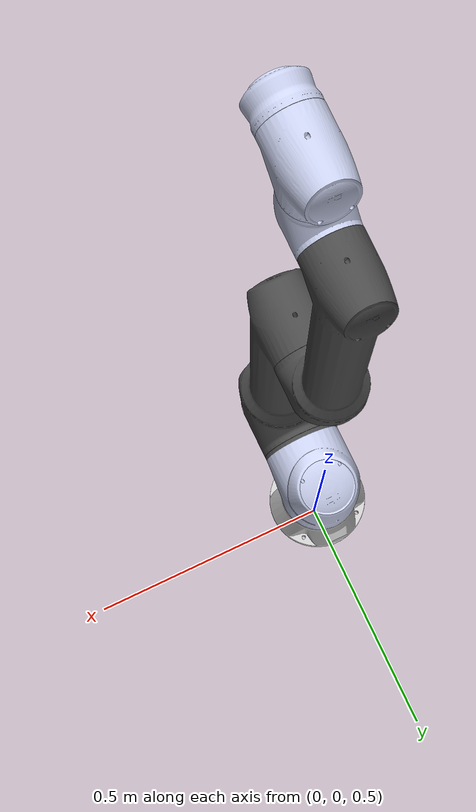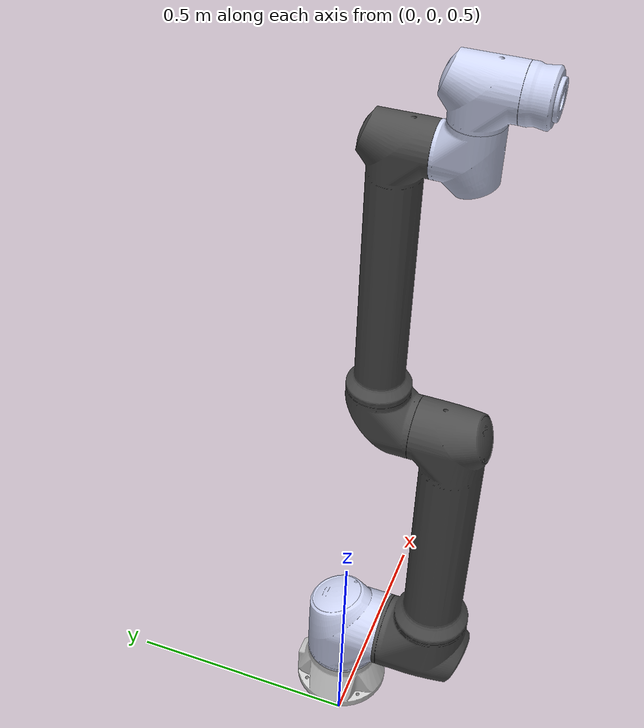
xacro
<?xml version="1.0"?>

<robot
    xmlns:xacro="http://www.ros.org/wiki/xacro">

    <xacro:property name="base_offset" value="0.6499999761581421"/>

    <link name="world"></link>

    <joint name="base_joint" type="fixed">
        <origin xyz="0 0 ${base_offset}" rpy="0 0 0"/>
        <parent link="world" />
        <child link="base_link" />
    </joint>

    <link name="base_link">
        <inertial>
            <origin
                xyz="-3.36084696400674E-05 0.00028713387556778 0.0438378186374772"
                rpy="0.0 0.0 0.0" />
            <mass value="2.25213983841171" />
            <inertia
                ixx="0.00610179267270193"
                ixy="5.05489700638155E-06"
                ixz="-2.06579420136556E-06"
                iyy="0.00603383828429949"
                iyz="-2.85750001496908E-06"
                izz="0.00860649294977137" />
        </inertial>
        <visual name="">
            <origin xyz="0.0 0.0 0.0" rpy="0.0 0.0 0.0" />
            <geometry>
                <mesh filename="package://keti_robot_description/meshes/base_link.STL" />
            </geometry>
            <material name="">
                <color rgba="0.8 0.8 0.8 1" />
            </material>
        </visual>
        <collision>
            <origin xyz="0.0 0.0 0.0" rpy="0.0 0.0 0.0" />
            <geometry>
                <mesh filename="package://keti_robot_description/meshes/base_link.STL" />
            </geometry>
        </collision>
    </link>

    <link name="link1">
        <inertial>
            <origin
                xyz="-0.000155596593394897 -0.0115300991030924 0.185903011387218"
                rpy="0.0 0.0 0.0">
            </origin>
            <mass value="3.38716123949166" />
            <inertia
                ixx="0.00965712344078406"
                ixy="2.56321142215039E-06"
                ixz="-2.07213259316219E-06"
                iyy="0.00999757711288239"
                iyz="0.00227412846191921"
                izz="0.00985394828837277" />
        </inertial>
        <visual name="">
            <origin xyz="0.0 0.0 0.0" rpy="0.0 0.0 0.0" />
            <geometry>
                <mesh filename="package://keti_robot_description/meshes/link1.STL" />
            </geometry>
            <material name="">
                <color rgba="0.792156862745098 0.819607843137255 0.933333333333333 1" />
            </material>
        </visual>
        <collision>
            <origin xyz="0.0 0.0 0.0" rpy="0.0 0.0 0.0" />
            <geometry>
                <mesh filename="package://keti_robot_description/meshes/link1.STL" />
            </geometry>
        </collision>
    </link>

    <link name="link2">
        <inertial>
            <origin
                xyz="-5.04047652291201E-05 -0.255908501214572 -0.182094524542086"
                rpy="0.0 0.0 0.0" />
            <mass value="10.3635885023069" />
            <inertia
                ixx="0.120627099316039"
                ixy="2.65066669408744E-06"
                ixz="2.16897828737298E-06"
                iyy="0.0227437773556374"
                iyz="-0.0016029791309899"
                izz="0.120841683724806" />
        </inertial>
        <visual name="">
            <origin xyz="0.0 0.0 0.0" rpy="0.0 0.0 0.0" />
            <geometry>
                <mesh filename="package://keti_robot_description/meshes/link2.STL" />
            </geometry>
            <material name="">
                <color rgba="0.294117647058824 0.294117647058824 0.294117647058824 1" />
            </material>
        </visual>
        <collision>
            <origin xyz="0.0 0.0 0.0" rpy="0.0 0.0 0.0" />
            <geometry>
                <mesh filename="package://keti_robot_description/meshes/link2.STL" />
            </geometry>
        </collision>
    </link>

    <link name="link3">
        <inertial>
            <origin
                xyz="0.266215180264014 1.29712622268241E-07 0.143135404945513"
                rpy="0.0 0.0 0.0" />
            <mass value="5.05083741641896" />
            <inertia
                ixx="0.00628902623789062"
                ixy="9.1337717733775E-09"
                ixz="-0.000370519945348952"
                iyy="0.061756757690725"
                iyz="-1.56347717729795E-09"
                izz="0.0618362170084191" />
        </inertial>
        <visual name="">
            <origin xyz="0.0 0.0 0.0" rpy="0.0 0.0 0.0" />
            <geometry>
                <mesh filename="package://keti_robot_description/meshes/link3.STL" />
            </geometry>
            <material name="">
                <color rgba="0.294117647058824 0.294117647058824 0.294117647058824 1" />
            </material>
        </visual>
        <collision>
            <origin xyz="0.0 0.0 0.0" rpy="0.0 0.0 0.0" />
            <geometry>
                <mesh filename="package://keti_robot_description/meshes/link3.STL" />
            </geometry>
        </collision>
    </link>

    <link name="link4">
        <inertial>
            <origin
                xyz="0.00564731690989118 -2.03600273793181E-07 -0.111294177443476"
                rpy="0.0 0.0 0.0" />
            <mass value="0.809634247265308" />
            <inertia
                ixx="0.000806283674225212"
                ixy="-1.71998154303632E-08"
                ixz="0.000215199499704635"
                iyy="0.000838076862135837"
                iyz="-7.62439682589746E-09"
                izz="0.00088136714943862" />
        </inertial>
        <visual name="">
            <origin xyz="0.0 0.0 0.0" rpy="0.0 0.0 0.0" />
            <geometry>
                <mesh filename="package://keti_robot_description/meshes/link4.STL" />
            </geometry>
            <material name="">
                <color rgba="0.792156862745098 0.819607843137255 0.933333333333333 1" />
                <texture filename="" />
            </material>
        </visual>
        <collision>
            <origin xyz="0.0 0.0 0.0" rpy="0.0 0.0 0.0" />
            <geometry>
                <mesh filename="package://keti_robot_description/meshes/link4.STL" />
            </geometry>
        </collision>
    </link>

    <link name="link5">
        <inertial>
            <origin
                xyz="3.79221289037446E-07 -0.0065154111458714 0.111384778201544"
                rpy="0.0 0.0 0.0" />
            <mass value="0.822358399005338" />
            <inertia
                ixx="0.00086697648332544"
                ixy="-4.3209208438896E-09"
                ixz="-3.43499554605311E-09"
                iyy="0.00082200885145279"
                iyz="0.000222523008866456"
                izz="0.000907682647219081" />
        </inertial>
        <visual name="">
            <origin xyz="0.0 0.0 0.0" rpy="0.0 0.0 0.0" />
            <geometry>
                <mesh filename="package://keti_robot_description/meshes/link5.STL" />
            </geometry>
            <material name="">
                <color rgba="0.792156862745098 0.819607843137255 0.933333333333333 1" />
                <texture filename="" />
            </material>
        </visual>
        <collision>
            <origin xyz="0.0 0.0 0.0" rpy="0.0 0.0 0.0" />
            <geometry>
                <mesh filename="package://keti_robot_description/meshes/link5.STL" />
            </geometry>
        </collision>
    </link>

    <link name="link6">
        <inertial>
            <origin
                xyz="-2.74288486201701E-07 -0.000235269428608742 -0.0906803365828259"
                rpy="0.0 0.0 0.0" />
            <mass value="0.237678022472349" />
            <inertia
                ixx="0.000145950216129124"
                ixy="-1.23036106344042E-09"
                ixz="-7.04161447052051E-10"
                iyy="0.000148314461323765"
                iyz="5.7765854614293E-07"
                izz="0.000234953691644831" />
        </inertial>
        <visual name="">
            <origin xyz="0.0 0.0 0.0" rpy="0.0 0.0 0.0" />
            <geometry>
                <mesh filename="package://keti_robot_description/meshes/link6.STL" />
            </geometry>
            <material name="">
                <color rgba="0.792156862745098 0.819607843137255 0.933333333333333 1" />
            </material>
        </visual>
        <collision>
            <origin xyz="0.0 0.0 0.0" rpy="0.0 0.0 0.0" />
            <geometry>
                <mesh filename="package://keti_robot_description/meshes/link6.STL" />
            </geometry>
        </collision>
    </link>

    <joint name="q1" type="revolute">
        <origin xyz="0.0 0.0 0.0" rpy="0.0 0.0 0.0" />
        <parent link="base_link" />
        <child link="link1" />
        <axis xyz="0.0 0.0 1.0" />
        <limit lower="-6.3" upper="6.3" effort="10" velocity="100" />
        <dynamics damping="50" friction="1"/>
    </joint>

    <joint name="q2" type="revolute">
        <origin xyz="0.0 0.0 0.198" rpy="-1.5708 0.0 0.0" />
        <parent link="link1" />
        <child link="link2" />
        <axis xyz="0.0 0.0 1.0" />
        <limit lower="-6.3" upper="6.3" effort="10" velocity="100" />
        <dynamics damping="50" friction="1"/>
    </joint>

    <joint name="q3" type="revolute">
        <origin xyz="0.0 -0.6127 -0.1875" rpy="0.0 0.0 -1.5708" />
        <parent link="link2" />
        <child link="link3" />
        <axis xyz="0.0 0.0 1.0" />
        <limit lower="-6.3" upper="6.3" effort="10" velocity="100" />
        <dynamics damping="50" friction="1"/>
    </joint>

    <joint name="q4" type="revolute">
        <origin xyz="0.57015 0 0.1484" rpy="0.0 0.0 0.0" />
        <parent link="link3" />
        <child link="link4" />
        <axis xyz="0.0 0.0 1.0" />
        <limit lower="-6.3" upper="6.3" effort="10" velocity="100" />
        <dynamics damping="50" friction="1"/>
    </joint>

    <joint name="q5" type="revolute">
        <origin xyz="0 0 -0.11715" rpy="1.5708 0 1.5708" />
        <parent link="link4" />
        <child link="link5" />
        <axis xyz="0.0 0.0 1.0" />
        <limit lower="-6.3" upper="6.3" effort="10" velocity="100" />
        <dynamics damping="50" friction="1"/>
    </joint>

    <joint name="q6" type="revolute">
        <origin xyz="0 0 0.11715" rpy="-1.5708 0 0" />
        <parent link="link5" />
        <child link="link6" />
        <axis xyz="0.0 0.0 1.0" />
        <limit lower="-6.3" upper="6.3" effort="10" velocity="100" />
        <dynamics damping="50" friction="1"/>
    </joint>

</robot>
